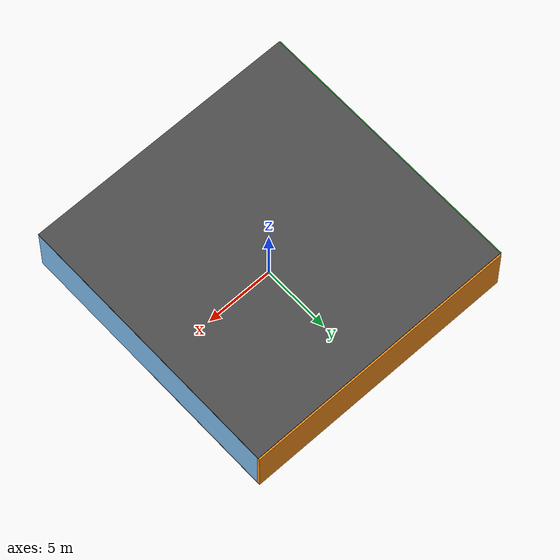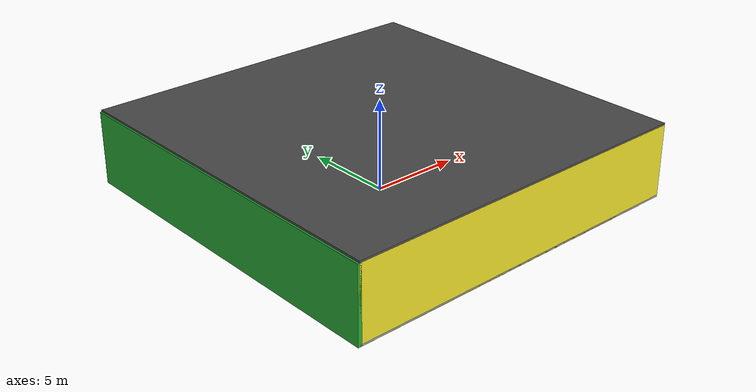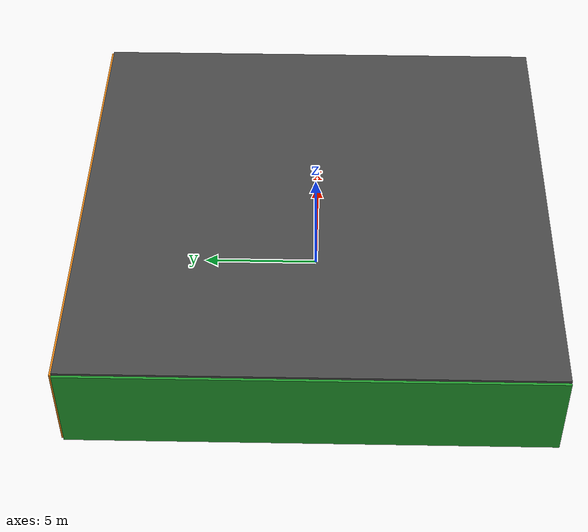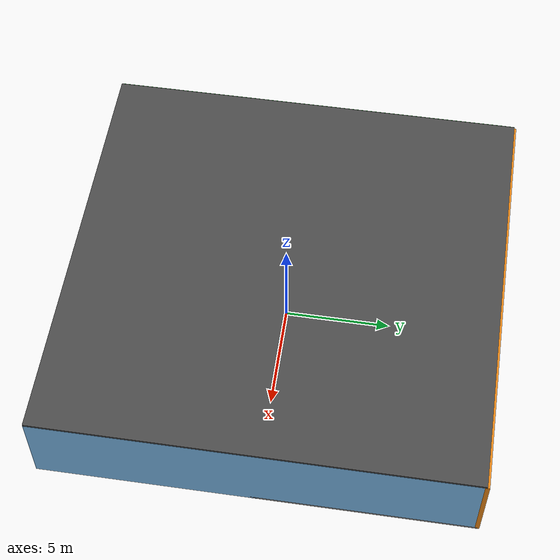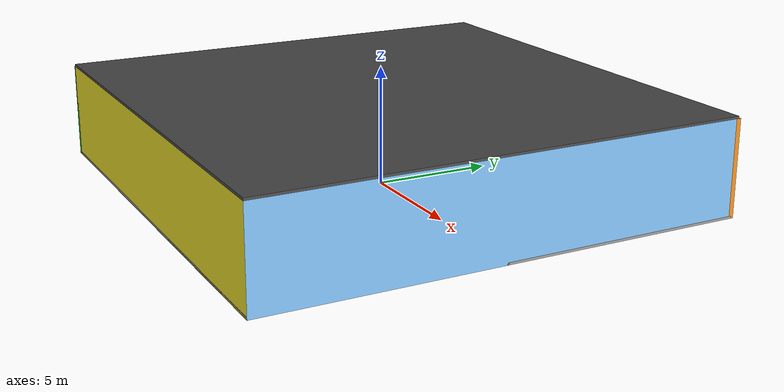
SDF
<sdf version="1.4">
 <world name="default">
  <physics type="ode">
   <max_step_size>0.001</max_step_size>
   <real_time_factor>1</real_time_factor>
   <real_time_update_rate>1000</real_time_update_rate>
   <gravity>0 0 -9.8</gravity>
  </physics>
  <scene><ambient>0.4 0.4 0.4 1</ambient><background>0.7 0.7 0.7 1</background><shadows>1</shadows></scene>
  <model name="Surrounding">
   <static>1</static>
   <link name="Ceiling">
    <collision name="Ceiling_Collision"><geometry><box><size>20 20 0.1</size></box></geometry></collision>
    <visual name="Ceiling_Visual">
     <geometry><box><size>20 20 0.1</size></box></geometry>
     <material>
      <script><uri>file://media/materials/scripts/gazebo.material</uri><name>Gazebo/DarkGrey</name></script>
     </material>
    </visual>
    <pose>0 0 4.05 0 0 0</pose>
   </link>
   <link name="Wall_South">
    <collision name="Wall_South_Collision">
     <geometry><box><size>20 0 4</size></box></geometry>
     <pose>0 0 2 0 -0 0</pose>
    </collision>
    <visual name="Wall_South_Visual">
     <pose>0 0 2 0 -0 0</pose>
     <geometry><box><size>20 0 4</size></box></geometry>
     <material>
      <script><uri>file://media/materials/scripts/gazebo.material</uri><name>Gazebo/Yellow</name></script>
     </material>
    </visual>
    <velocity_decay><linear>0</linear><angular>0</angular></velocity_decay>
    <pose>0 -10 0 0 -0 0</pose>
   </link>
   <link name="Wall_East">
    <collision name="Wall_21_Collision">
     <geometry><box><size>20 0 4</size></box></geometry>
     <pose>0 0 2 0 -0 0</pose>
    </collision>
    <visual name="Wall_21_Visual">
     <pose>0 0 2 0 -0 0</pose>
     <geometry><box><size>20 0 4</size></box></geometry>
     <material>
      <script><uri>file://media/materials/scripts/gazebo.material</uri><name>Gazebo/SkyBlue</name></script>
     </material>
    </visual>
    <velocity_decay><linear>0</linear><angular>0</angular></velocity_decay>
    <pose>10 0 0 0 -0 1.5708</pose>
   </link>
   <link name="Wall_North">
    <collision name="Wall_22_Collision">
     <geometry><box><size>20 0.2 4</size></box></geometry>
     <pose>0 0 2 0 -0 0</pose>
    </collision>
    <visual name="Wall_22_Visual">
     <pose>0 0 2 0 -0 0</pose>
     <geometry><box><size>20 0.2 4</size></box></geometry>
     <material>
      <script><uri>file://media/materials/scripts/gazebo.material</uri><name>Gazebo/Orange</name></script>
     </material>
    </visual>
    <velocity_decay><linear>0</linear><angular>0</angular></velocity_decay>
    <pose>0 10 0 0 -0 0</pose>
   </link>
   <link name="Wall_West">
    <collision name="Wall_23_Collision">
     <geometry><box><size>20 0.2 4</size></box></geometry>
     <pose>0 0 2 0 -0 0</pose>
    </collision>
    <visual name="Wall_23_Visual">
     <pose>0 0 2 0 -0 0</pose>
     <geometry><box><size>20 0.2 4</size></box></geometry>
     <material>
      <script><uri>file://media/materials/scripts/gazebo.material</uri><name>Gazebo/GreenGlow</name></script>
     </material>
    </visual>
    <velocity_decay><linear>0</linear><angular>0</angular></velocity_decay>
    <pose>-10 0 0 0 0 -1.5708</pose>
   </link>
   <link name="Ground_link">
    <collision name="collision">
     <pose>0 0 .05 0 -0 0</pose>
     <geometry><box><size>20 20 0.1</size></box></geometry>
    </collision>
    <visual name="visual">
     <pose>0 0 .05 0 -0 0</pose>
     <geometry><box><size>20 20 0.1</size></box></geometry>
     <material>
      <script><uri>file://media/materials/scripts/gazebo.material</uri><name>Gazebo/Grey</name></script>
     </material>
    </visual>
   </link>
   <static>1</static>
  </model>
  <spherical_coordinates>
   <surface_model>EARTH_WGS84</surface_model>
   <latitude_deg>0</latitude_deg>
   <longitude_deg>0</longitude_deg>
   <elevation>0</elevation>
   <heading_deg>0</heading_deg>
  </spherical_coordinates>
  <light name="lightball_0" type="diffuse">
   <diffuse>0.8 0.8 0.8 1</diffuse>
   <specular>0.2 0.2 0.2 1</specular>
   <attenuation>
    <range>100</range>
    <constant>0.7</constant>
    <linear>0.01</linear>
    <quadratic>0.001</quadratic>
   </attenuation>
   <direction>-0.5 0.1 -0.9</direction>
   <pose>1.58458810937 0.376254966757 1.5454967882 0 0 0</pose>
  </light>
  <light name="lightball_1" type="diffuse">
   <diffuse>0.8 0.8 0.8 1</diffuse>
   <specular>0.2 0.2 0.2 1</specular>
   <attenuation>
    <range>100</range>
    <constant>0.7</constant>
    <linear>0.01</linear>
    <quadratic>0.001</quadratic>
   </attenuation>
   <direction>-0.5 0.1 -0.9</direction>
   <pose>-8.35681579333 4.75715137991 3.47185829049 0 0 0</pose>
  </light>
  <light name="lightball_2" type="diffuse">
   <diffuse>0.8 0.8 0.8 1</diffuse>
   <specular>0.2 0.2 0.2 1</specular>
   <attenuation>
    <range>100</range>
    <constant>0.7</constant>
    <linear>0.01</linear>
    <quadratic>0.001</quadratic>
   </attenuation>
   <direction>-0.5 0.1 -0.9</direction>
   <pose>3.73791424357 9.29786421445 2.41777680685 0 0 0</pose>
  </light>
  <light name="lightball_3" type="diffuse">
   <diffuse>0.8 0.8 0.8 1</diffuse>
   <specular>0.2 0.2 0.2 1</specular>
   <attenuation>
    <range>100</range>
    <constant>0.7</constant>
    <linear>0.01</linear>
    <quadratic>0.001</quadratic>
   </attenuation>
   <direction>-0.5 0.1 -0.9</direction>
   <pose>-4.66087678784 1.67073064916 1.68798969456 0 0 0</pose>
  </light>
  <light name="lightball_4" type="diffuse">
   <diffuse>0.8 0.8 0.8 1</diffuse>
   <specular>0.2 0.2 0.2 1</specular>
   <attenuation>
    <range>100</range>
    <constant>0.7</constant>
    <linear>0.01</linear>
    <quadratic>0.001</quadratic>
   </attenuation>
   <direction>-0.5 0.1 -0.9</direction>
   <pose>9.24429761393 -8.95999680279 1.11513720678 0 0 0</pose>
  </light>
  <include>
   <uri>model://textured_shapes</uri>
   <pose>-5.60463226817 3.7628231464 0 0 0 2.0859760615</pose>
  </include>
  <include>
   <uri>model://robocup_3Dsim_goal</uri>
   <pose>-0.528269144533 -1.24540071503 0 0 0 2.7191537508</pose>
  </include>
  <include><uri>model://cabinet</uri><pose>4.32961323142 -7.4113411198 0 0 0 0.550691304774</pose></include>
  <include>
   <uri>model://robocup_3Dsim_goal</uri>
   <pose>3.5403327984 4.25420549342 0 0 0 2.42854407752</pose>
  </include>
 </world>
</sdf>

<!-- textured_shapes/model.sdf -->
<sdf version="1.6">
  <model name="textured_shapes">
    <pose>0 0 0.5 0 0 0</pose>
    <link name="box">
      <pose>0 -1.5 0 0 0 0</pose>
      <collision name="collision">
        <geometry>
          <box>
            <size>1 1 1</size>
          </box>
        </geometry>
      </collision>
      <visual name="visual">
        <geometry>
          <box>
            <size>1 1 1</size>
          </box>
        </geometry>
        <material>
          <script>
            <uri>model://../model_source/models/textured_shapes/materials/scripts</uri>
            <uri>model://../model_source/models/textured_shapes/materials/textures</uri>
            <name>TexturedShape/Squares</name>
          </script>
        </material>
      </visual>
    </link>
    <link name="sphere">
      <collision name="collision">
        <geometry>
          <sphere>
            <radius>0.5</radius>
          </sphere>
        </geometry>
      </collision>
      <visual name="visual">
        <geometry>
          <sphere>
            <radius>0.5</radius>
          </sphere>
        </geometry>
        <material>
          <script>
            <uri>model://../model_source/models/textured_shapes/materials/scripts</uri>
            <uri>model://../model_source/models/textured_shapes/materials/textures</uri>
            <name>TexturedShape/Squares</name>
          </script>
        </material>
      </visual>
    </link>
    <link name="cylinder">
      <pose>0 1.5 0 0 0 0</pose>
      <collision name="collision">
        <geometry>
          <cylinder>
            <radius>0.5</radius>
            <length>1</length>
          </cylinder>
        </geometry>
      </collision>
      <visual name="visual">
        <geometry>
          <cylinder>
            <radius>0.5</radius>
            <length>1</length>
          </cylinder>
        </geometry>
        <material>
          <script>
            <uri>model://../model_source/models/textured_shapes/materials/scripts</uri>
            <uri>model://../model_source/models/textured_shapes/materials/textures</uri>
            <name>TexturedShape/Squares</name>
          </script>
        </material>
      </visual>
    </link>
  </model>
</sdf>

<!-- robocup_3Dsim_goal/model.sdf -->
<sdf version="1.5">
  <model name="robocup_3d_goal">
    <static>true</static>
    <link name="left_post">
      <pose>0 1.05 0.45 0 0 0</pose>
      <collision name="collision">
        <geometry>
          <cylinder>
            <radius>0.05</radius>
            <length>0.9</length>
          </cylinder>
        </geometry>
      </collision>
      <visual name="visual">
        <geometry>
          <cylinder>
            <radius>0.05</radius>
            <length>0.9</length>
          </cylinder>
        </geometry>
        <material>
          <script>
            <uri>file://media/materials/scripts/gazebo.material</uri>
            <name>Gazebo/ZincYellow</name>
          </script>
        </material>
      </visual>
    </link>
    <link name="left_support_horiz_lower">
      <pose>0.30 1.05 0.01 0 0 0</pose>
      <collision name="collision">
        <geometry>
          <box>
            <size>0.50 0.02 0.02</size>
          </box>
        </geometry>
      </collision>
      <visual name="visual">
        <geometry>
          <box>
            <size>0.50 0.02 0.02</size>
          </box>
        </geometry>
        <material>
          <script>
            <uri>file://media/materials/scripts/gazebo.material</uri>
            <name>Gazebo/White</name>
          </script>
        </material>
      </visual>
    </link>
    <link name="left_support_horiz_upper">
      <pose>0.30 1.05 0.79 0 0 0</pose>
      <collision name="collision">
        <geometry>
          <box>
            <size>0.50 0.02 0.02</size>
          </box>
        </geometry>
      </collision>
      <visual name="visual">
        <geometry>
          <box>
            <size>0.50 0.02 0.02</size>
          </box>
        </geometry>
        <material>
          <script>
            <uri>file://media/materials/scripts/gazebo.material</uri>
            <name>Gazebo/White</name>
          </script>
        </material>
      </visual>
    </link>
    <link name="left_support_vertical">
      <pose>0.56 1.05 0.4 0 1.5708 0</pose>
      <collision name="collision">
        <geometry>
          <box>
            <size>0.80 0.02 0.02</size>
          </box>
        </geometry>
      </collision>
      <visual name="visual">
        <geometry>
          <box>
            <size>0.80 0.02 0.02</size>
          </box>
        </geometry>
        <material>
          <script>
            <uri>file://media/materials/scripts/gazebo.material</uri>
            <name>Gazebo/White</name>
          </script>
        </material>
      </visual>
    </link>
    <link name="right_support_horiz_lower">
      <pose>0.30 -1.05 0.01 0 0 0</pose>
      <collision name="collision">
        <geometry>
          <box>
            <size>0.50 0.02 0.02</size>
          </box>
        </geometry>
      </collision>
      <visual name="visual">
        <geometry>
          <box>
            <size>0.50 0.02 0.02</size>
          </box>
        </geometry>
        <material>
          <script>
            <uri>file://media/materials/scripts/gazebo.material</uri>
            <name>Gazebo/White</name>
          </script>
        </material>
      </visual>
    </link>
    <link name="right_support_horiz_upper">
      <pose>0.30 -1.05 0.79 0 0 0</pose>
      <collision name="collision">
        <geometry>
          <box>
            <size>0.50 0.02 0.02</size>
          </box>
        </geometry>
      </collision>
      <visual name="visual">
        <geometry>
          <box>
            <size>0.50 0.02 0.02</size>
          </box>
        </geometry>
        <material>
          <script>
            <uri>file://media/materials/scripts/gazebo.material</uri>
            <name>Gazebo/White</name>
          </script>
        </material>
      </visual>
    </link>
    <link name="right_support_vertical">
      <pose>0.56 -1.05 0.4 0 1.5708 0</pose>
      <collision name="collision">
        <geometry>
          <box>
            <size>0.80 0.02 0.02</size>
          </box>
        </geometry>
      </collision>
      <visual name="visual">
        <geometry>
          <box>
            <size>0.80 0.02 0.02</size>
          </box>
        </geometry>
        <material>
          <script>
            <uri>file://media/materials/scripts/gazebo.material</uri>
            <name>Gazebo/White</name>
          </script>
        </material>
      </visual>
    </link>
    <link name="center_support_horiz_lower">
      <pose>0.56 0 0.01 0 1.5708 0</pose>
      <collision name="collision">
        <geometry>
          <box>
            <size>0.02 2.08 0.02</size>
          </box>
        </geometry>
      </collision>
      <visual name="visual">
        <geometry>
          <box>
            <size>0.02 2.08 0.02</size>
          </box>
        </geometry>
        <material>
          <script>
            <uri>file://media/materials/scripts/gazebo.material</uri>
            <name>Gazebo/White</name>
          </script>
        </material>
      </visual>
    </link>
    <link name="center_support_horiz_upper">
      <pose>0.56 0 0.79 0 1.5708 0</pose>
      <collision name="collision">
        <geometry>
          <box>
            <size>0.02 2.08 0.02</size>
          </box>
        </geometry>
      </collision>
      <visual name="visual">
        <geometry>
          <box>
            <size>0.02 2.08 0.02</size>
          </box>
        </geometry>
        <material>
          <script>
            <uri>file://media/materials/scripts/gazebo.material</uri>
            <name>Gazebo/White</name>
          </script>
        </material>
      </visual>
    </link>
    <link name="right_post">
      <pose>0 -1.05 0.45 0 0 0</pose>
      <collision name="collision">
        <geometry>
          <cylinder>
            <radius>0.05</radius>
            <length>0.9</length>
          </cylinder>
        </geometry>
      </collision>
      <visual name="visual">
        <geometry>
          <cylinder>
            <radius>0.05</radius>
            <length>0.9</length>
          </cylinder>
        </geometry>
        <material>
          <script>
            <uri>file://media/materials/scripts/gazebo.material</uri>
            <name>Gazebo/ZincYellow</name>
          </script>
        </material>
      </visual>
    </link>
    <link name="crossbar">
      <pose>0 0 0.85 1.57 1.57 0</pose>
      <collision name="collision">
        <geometry>
          <cylinder>
            <radius>0.05</radius>
            <length>2.0</length>
          </cylinder>
        </geometry>
      </collision>
      <visual name="visual">
        <geometry>
          <cylinder>
            <radius>0.05</radius>
            <length>2.0</length>
          </cylinder>
        </geometry>
        <material>
          <script>
            <uri>file://media/materials/scripts/gazebo.material</uri>
            <name>Gazebo/ZincYellow</name>
          </script>
        </material>
      </visual>
    </link>
    <link name="center_net">
      <pose>0.56 0 0.40 0 0 0</pose>
      <collision name="collision">
        <geometry>
          <box>
            <size>0.01 2.1 0.80</size>
          </box>
        </geometry>
      </collision>
      <visual name="visual">
        <geometry>
          <box>
            <size>0.01 2.1 0.80</size>
          </box>
        </geometry>
        <material>
          <script>
            <uri>model://../model_source/models/robocup09_spl_field/materials/scripts/</uri>
            <uri>model://../model_source/models/robocup09_spl_field/materials/textures/</uri>
            <name>RoboCup/Net</name>
          </script>
        </material>
      </visual>
    </link>
    <link name="left_net">
      <pose>0.30 1.05 0.40 0 0 0</pose>
      <collision name="collision">
        <geometry>
          <box>
            <size>0.50 0.01 0.76</size>
          </box>
        </geometry>
      </collision>
      <visual name="visual">
        <geometry>
          <box>
            <size>0.50 0.01 0.76</size>
          </box>
        </geometry>
        <material>
          <script>
            <uri>model://../model_source/models/robocup09_spl_field/materials/scripts/</uri>
            <uri>model://../model_source/models/robocup09_spl_field/materials/textures/</uri>
            <name>RoboCup/Net</name>
          </script>
        </material>
      </visual>
    </link>
    <link name="right_net">
      <pose>0.30 -1.05 0.40 0 0 0</pose>
      <collision name="collision">
        <geometry>
          <box>
            <size>0.50 0.01 0.76</size>
          </box>
        </geometry>
      </collision>
      <visual name="visual">
        <geometry>
          <box>
            <size>0.50 0.01 0.76</size>
          </box>
        </geometry>
        <material>
          <script>
            <uri>model://../model_source/models/robocup09_spl_field/materials/scripts/</uri>
            <uri>model://../model_source/models/robocup09_spl_field/materials/textures/</uri>
            <name>RoboCup/Net</name>
          </script>
        </material>
      </visual>
    </link>
  </model>
</sdf>

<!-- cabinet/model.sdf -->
<sdf version="1.5">
  <model name="cabinet">
    <static>true</static>
    <link name="cabinet_bottom_plate">
      <inertial>
        <pose>0 0 -1 0 0 0</pose>
        <inertia>
          <ixx>2.050000</ixx>
          <ixy>0</ixy>
          <ixz>0</ixz>
          <iyy>2.050000</iyy>
          <iyz>0</iyz>
          <izz>2.050000</izz>
        </inertia>
        <mass>25.000000</mass>
      </inertial>
      <collision name="cabinet_bottom_plate_geom">
        <pose>0 0 0.010000 0 0 0</pose>
        <geometry>
          <box>
            <size>0.450000 0.450000 0.020000</size>
          </box>
        </geometry>
      </collision>
      <visual name="cabinet_bottom_plate_geom_visual">
        <pose>0 0 0.010000 0 0 0</pose>
        <geometry>
          <box>
            <size>0.450000 0.450000 0.020000</size>
          </box>
        </geometry>
        <material>
          <script>
            <uri>model://media/materials/scripts/gazebo.material</uri>
            <name>Gazebo/Wood</name>
          </script>
        </material>
      </visual>
      <collision name="cabinet_bottom_plate_geom_cabinet_back_plate">
        <pose>0.235000 0 0.510000 0 0 0</pose>
        <geometry>
          <box>
            <size>0.020000 0.450000 1.020000</size>
          </box>
        </geometry>
      </collision>
      <visual name="cabinet_bottom_plate_geom_cabinet_back_plate_visual">
        <pose>0.235000 0 0.510000 0 0 0</pose>
        <geometry>
          <box>
            <size>0.020000 0.450000 1.020000</size>
          </box>
        </geometry>
        <material>
          <script>
            <uri>model://media/materials/scripts/gazebo.material</uri>
            <name>Gazebo/Wood</name>
          </script>
        </material>
      </visual>
      <collision name="cabinet_bottom_plate_geom_cabinet_left_plate">
        <pose>0 0.235000 0.510000 0 0 0</pose>
        <geometry>
          <box>
            <size>0.450000 0.020000 1.020000</size>
          </box>
        </geometry>
      </collision>
      <visual name="cabinet_bottom_plate_geom_cabinet_left_plate_visual">
        <pose>0 0.235000 0.510000 0 0 0</pose>
        <geometry>
          <box>
            <size>0.450000 0.020000 1.020000</size>
          </box>
        </geometry>
        <material>
          <script>
            <uri>model://media/materials/scripts/gazebo.material</uri>
            <name>Gazebo/Wood</name>
          </script>
        </material>
      </visual>
      <collision name="cabinet_bottom_plate_geom_cabinet_middle_plate">
        <pose>0 0 0.510000 0 0 0</pose>
        <geometry>
          <box>
            <size>0.450000 0.450000 0.020000</size>
          </box>
        </geometry>
      </collision>
      <visual name="cabinet_bottom_plate_geom_cabinet_middle_plate_visual">
        <pose>0 0 0.510000 0 0 0</pose>
        <geometry>
          <box>
            <size>0.450000 0.450000 0.020000</size>
          </box>
        </geometry>
        <material>
          <script>
            <uri>model://media/materials/scripts/gazebo.material</uri>
            <name>Gazebo/Wood</name>
          </script>
        </material>
      </visual>
      <collision name="cabinet_bottom_plate_geom_cabinet_right_plate">
        <pose>0 -0.235000 0.510000 0 0 0</pose>
        <geometry>
          <box>
            <size>0.450000 0.020000 1.020000</size>
          </box>
        </geometry>
      </collision>
      <visual name="cabinet_bottom_plate_geom_cabinet_right_plate_visual">
        <pose>0 -0.235000 0.510000 0 0 0</pose>
        <geometry>
          <box>
            <size>0.450000 0.020000 1.020000</size>
          </box>
        </geometry>
        <material>
          <script>
            <uri>model://media/materials/scripts/gazebo.material</uri>
            <name>Gazebo/Wood</name>
          </script>
        </material>
      </visual>
      <collision name="cabinet_bottom_plate_geom_cabinet_top_plate">
        <pose>0 0 1.010000 0 0 0</pose>
        <geometry>
          <box>
            <size>0.450000 0.450000 0.020000</size>
          </box>
        </geometry>
      </collision>
      <visual name="cabinet_bottom_plate_geom_cabinet_top_plate_visual">
        <pose>0 0 1.010000 0 0 0</pose>
        <geometry>
          <box>
            <size>0.450000 0.450000 0.020000</size>
          </box>
        </geometry>
        <material>
          <script>
            <uri>model://media/materials/scripts/gazebo.material</uri>
            <name>Gazebo/Wood</name>
          </script>
        </material>
      </visual>
    </link>
  </model>
</sdf>
